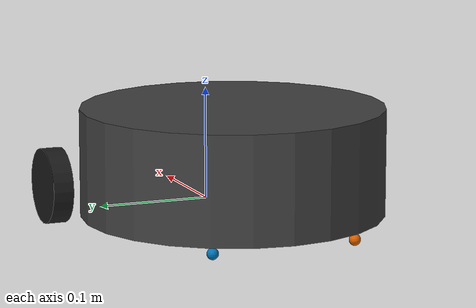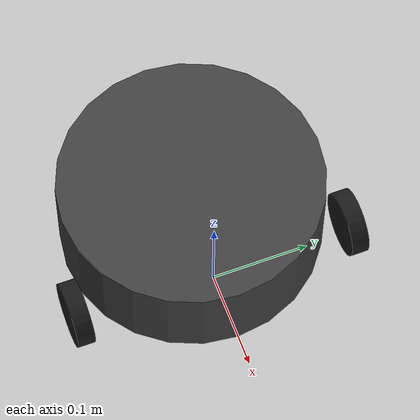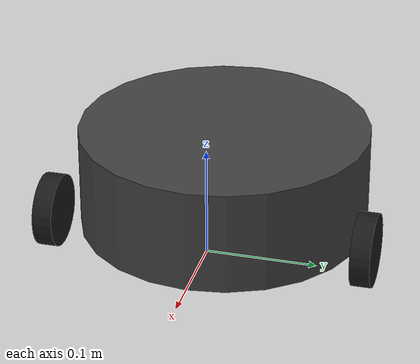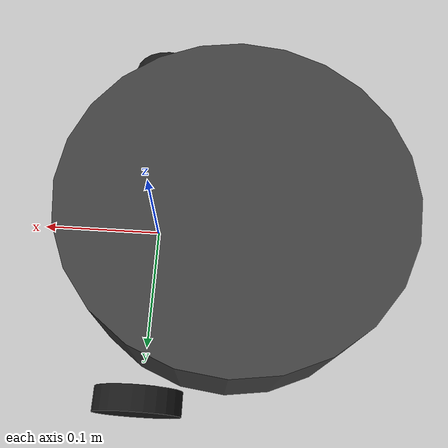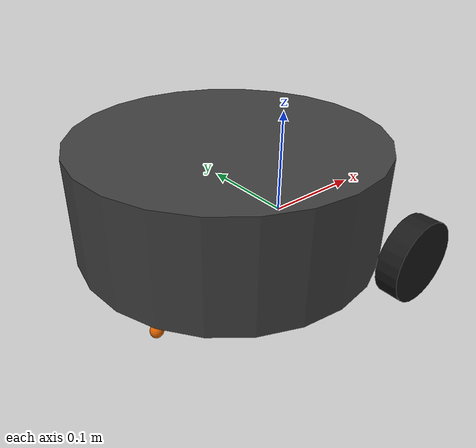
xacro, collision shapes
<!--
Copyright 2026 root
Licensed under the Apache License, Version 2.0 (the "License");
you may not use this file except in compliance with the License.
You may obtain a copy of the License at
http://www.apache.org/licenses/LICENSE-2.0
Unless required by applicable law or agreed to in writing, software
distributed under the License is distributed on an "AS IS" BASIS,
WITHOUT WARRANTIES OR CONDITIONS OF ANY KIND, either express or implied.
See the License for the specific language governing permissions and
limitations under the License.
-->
<?xml version="1.0"?>
<robot xmlns:xacro="http://www.ros.org/wiki/xacro" >

    <material name="dark_grey">
        <color rgba="0.25 0.25 0.25 1"/>
    </material>

    <material name="black">
        <color rgba="0.1 0.1 0.1 1"/>
    </material>

    <!-- base_link sits between the drive wheels, 10 mm above the ground -->
    <link name="base_link">
    </link>

    <!-- chassis origin is the geometric centre of the Waffle Pi body -->
    <joint name="chassis_joint" type="fixed">
        <parent link="base_link"/>
        <child link="chassis"/>
        <origin xyz="-0.064 0 0"/>
    </joint>

    <link name="chassis">
        <visual>
            <geometry>
                <mesh filename="package://my_bot/meshes/waffle_pi_base.stl" scale="0.001 0.001 0.001"/>
            </geometry>
            <material name="dark_grey"/>
        </visual>
        <collision>
            <origin xyz="0 0 0.047"/>
            <geometry>
                <cylinder radius="0.133" length="0.094"/>
            </geometry>
        </collision>
        <inertial>
            <origin xyz="0.064 0 0" rpy="0 0 0"/>
            <mass value="1.3729096"/>
            <inertia ixx="8.7002718e-03" ixy="-4.7576583e-05" ixz="1.1160499e-04"
                     iyy="8.6195418e-03" iyz="-3.5422299e-06" izz="1.4612727e-02"/>
        </inertial>
    </link>

    <joint name="left_wheel_joint" type="continuous">
        <parent link="base_link"/>
        <child link="left_wheel"/>
        <origin xyz="0 0.144 0.023" rpy="-${pi/2} 0 0" />
        <axis xyz="0 0 1"/>
    </joint>

    <link name="left_wheel">
        <visual>
            <origin xyz="0 0 0" rpy="${pi/2} 0 0"/>
            <geometry>
                <mesh filename="package://my_bot/meshes/left_tire.stl" scale="0.001 0.001 0.001"/>
            </geometry>
            <material name="black"/>
        </visual>
        <collision>
            <geometry>
                <cylinder radius="0.033" length="0.018"/>
            </geometry>
        </collision>
        <inertial>
            <mass value="0.028498940"/>
            <inertia ixx="1.1175580e-05" ixy="0" ixz="0" iyy="1.1192413e-05" iyz="0" izz="2.0712558e-05"/>
        </inertial>
    </link>

    <joint name="right_wheel_joint" type="continuous">
        <parent link="base_link"/>
        <child link="right_wheel"/>
        <origin xyz="0 -0.144 0.023" rpy="-${pi/2} 0 0" />
        <axis xyz="0 0 1"/>
    </joint>

    <link name="right_wheel">
        <visual>
            <origin xyz="0 0 0" rpy="${pi/2} 0 0"/>
            <geometry>
                <mesh filename="package://my_bot/meshes/right_tire.stl" scale="0.001 0.001 0.001"/>
            </geometry>
            <material name="black"/>
        </visual>
        <collision>
            <geometry>
                <cylinder radius="0.033" length="0.018"/>
            </geometry>
        </collision>
        <inertial>
            <mass value="0.028498940"/>
            <inertia ixx="1.1175580e-05" ixy="0" ixz="0" iyy="1.1192413e-05" iyz="0" izz="2.0712558e-05"/>
        </inertial>
    </link>

    <!-- Two rear ball casters (their shells are part of the base mesh) -->
    <xacro:macro name="caster" params="side y">
        <joint name="caster_${side}_joint" type="fixed">
            <parent link="chassis"/>
            <child link="caster_${side}"/>
            <origin xyz="-0.113 ${y} -0.005"/>
        </joint>

        <link name="caster_${side}">
            <collision>
                <geometry>
                    <sphere radius="0.005"/>
                </geometry>
            </collision>
            <inertial>
                <mass value="0.005"/>
                <inertia ixx="1e-06" ixy="0" ixz="0" iyy="1e-06" iyz="0" izz="1e-06"/>
            </inertial>
        </link>

        <gazebo reference="caster_${side}">
            <mu1 value="0.001"/>
            <mu2 value="0.001"/>
        </gazebo>
    </xacro:macro>

    <xacro:caster side="back_left" y="0.064"/>
    <xacro:caster side="back_right" y="-0.064"/>

</robot>
